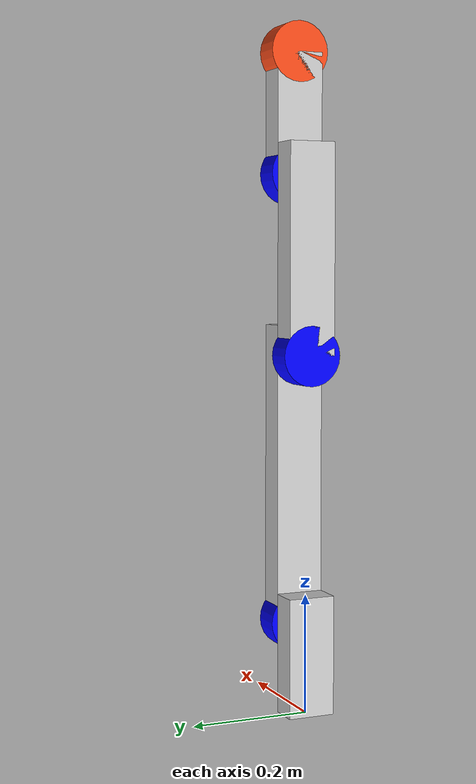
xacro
<?xml version="1.0"?>
<robot xmlns:xacro="http://www.ros.org/wiki/xacro"  name="robot">

    <material name="grey">
        <color rgba="0.8 0.8 0.8 1"/>
    </material>

    <material name="white">
        <color rgba="1 1 1 1"/>
    </material>

    <material name="orange">
        <color rgba="1 0.3 0.1 1"/>
    </material>

    <material name="blue">
        <color rgba="0 0 1 1"/>
    </material>

    <!-- BASE -->
    <link name="base_link">
    </link>

    <!-- BODY -->
    <joint name="body_joint" type="fixed">
        <parent link="base_link"/>
        <child link="body"/>
    </joint>

    <link name="body">
        <visual>
            <origin xyz="0 0 0.1" rpy="0 0 0"/>
            <geometry>
                <box size="0.05 0.08 0.2"/>
            </geometry>
            <material name="grey" />
        </visual>
    </link>

    <!-- JOINT 01 -->
    <joint name="body_to_joint01" type="revolute">
        <parent link="body"/>
        <child link="joint01"/>
        <origin xyz="0.05 0 0.15" rpy="0 0 0"/>
        <axis rpy="0 0 0" xyz="1 0 0" />
        <limit effort="0.1" lower="-3.14" upper="3.14" velocity="0.2"/>
    </joint>

    <link name="joint01">
        <visual>
            <geometry>
                <cylinder radius="0.05" length="0.05"/>
            </geometry>
            <material name="blue"/>
            <origin xyz="0 0 0" rpy="0 ${pi/2} 0"/>
        </visual>
    </link>

    <joint name="joint01_to_link01" type="fixed">
        <origin xyz="0 0 0.25" rpy="0 0 0"/>
        <parent link="joint01"/>
        <child link="link01"/>
    </joint>

    <link name="link01">
        <visual>
            <geometry>
                <box size="0.05 0.08 0.5"/>
            </geometry>
            <material name="grey" />
        </visual>
    </link>

    <!-- JOINT 02 -->
    <joint name="link01_to_joint02" type="revolute">
        <parent link="link01"/>
        <child link="joint02"/>
        <origin xyz="-0.05 0 0.2" rpy="0 0 0"/>
        <axis rpy="0 0 0" xyz="1 0 0" />
        <limit effort="0.1" lower="-3.14" upper="3.14" velocity="0.2"/>
    </joint>

    <link name="joint02">
        <visual>
            <geometry>
                <cylinder radius="0.05" length="0.05"/>
            </geometry>
            <origin xyz="0 0 0" rpy="0 ${pi/2} 0"/>
            <material name="blue"/>
        </visual>
    </link>

    <joint name="joint02_to_link02" type="fixed">
        <origin xyz="0 0 0.175" rpy="0 0 0"/>
        <parent link="joint02"/>
        <child link="link02"/>
    </joint>

    <link name="link02">
        <visual>
            <geometry>
                <box size="0.05 0.08 0.35"/>
            </geometry>
            <material name="grey" />
        </visual>
    </link>

    <!-- JOINT 03 -->
    <joint name="link02_to_joint03" type="revolute">
        <parent link="link02"/>
        <child link="joint03"/>
        <origin xyz="0.05 0 0.125" rpy="0 0 0"/>
        <axis rpy="0 0 0" xyz="1 0 0" />
        <limit effort="0.1" lower="-3.14" upper="3.14" velocity="0.2"/>
    </joint>

    <link name="joint03">
        <visual>
            <geometry>
                <cylinder radius="0.05" length="0.05"/>
            </geometry>
            <origin xyz="0 0 0" rpy="0 ${pi/2} 0"/>
            <material name="blue"/>
        </visual>
    </link>

    <joint name="joint03_to_link03" type="fixed">
        <origin xyz="0 0 0.1" rpy="0 0 0"/>
        <parent link="joint03"/>
        <child link="link03"/>
    </joint>

    <link name="link03">
        <visual>
            <geometry>
                <box size="0.05 0.08 0.2"/>
            </geometry>
            <material name="grey" />
        </visual>
    </link>

    <!--EDGE -->
    <joint name="link03_to_edge" type="fixed">
        <origin xyz="0 0 0.1" rpy="0 0 0"/>
        <parent link="link03"/>
        <child link="edge"/>
    </joint>

    <link name="edge">
        <visual>
            <geometry>
                <cylinder radius="0.05" length="0.05"/>
            </geometry>
            <origin xyz="0 0 0" rpy="0 ${pi/2} 0"/>
            <material name="orange"/>
        </visual>
    </link>

</robot>
